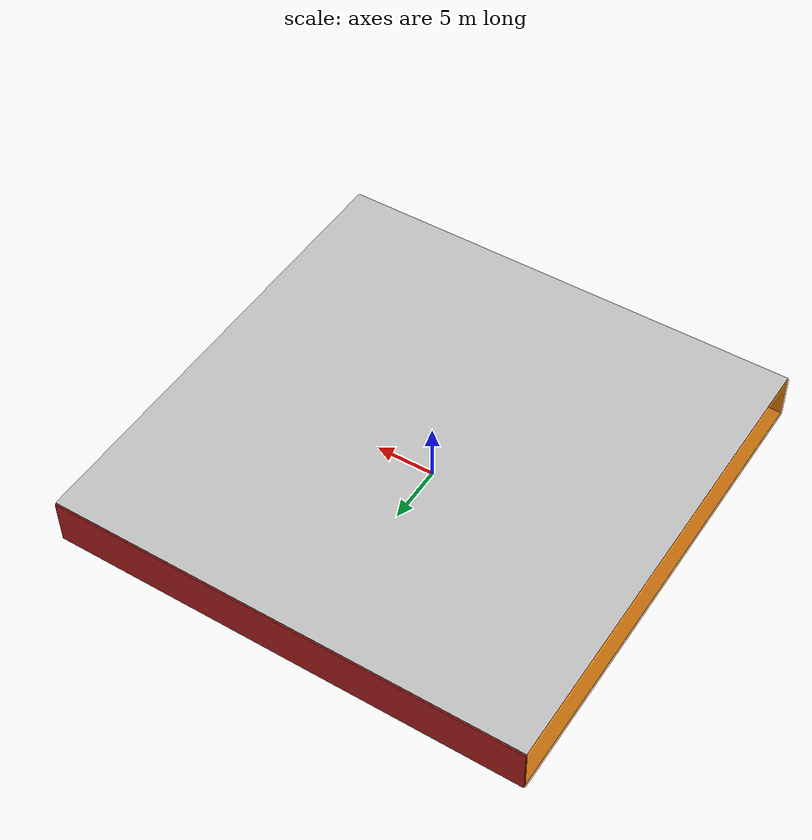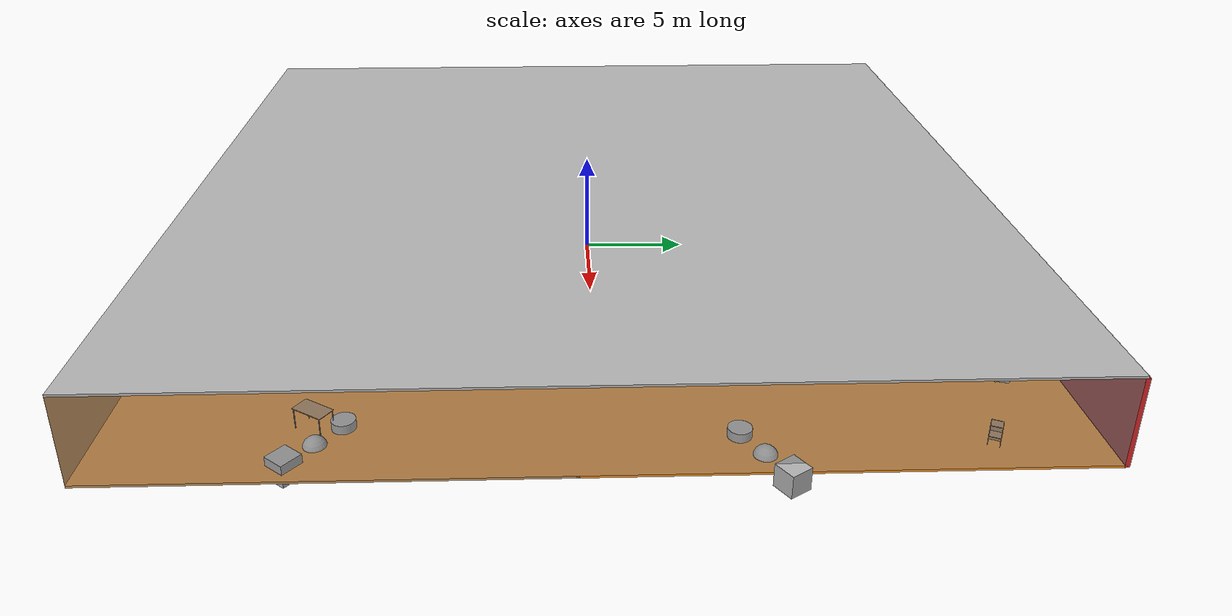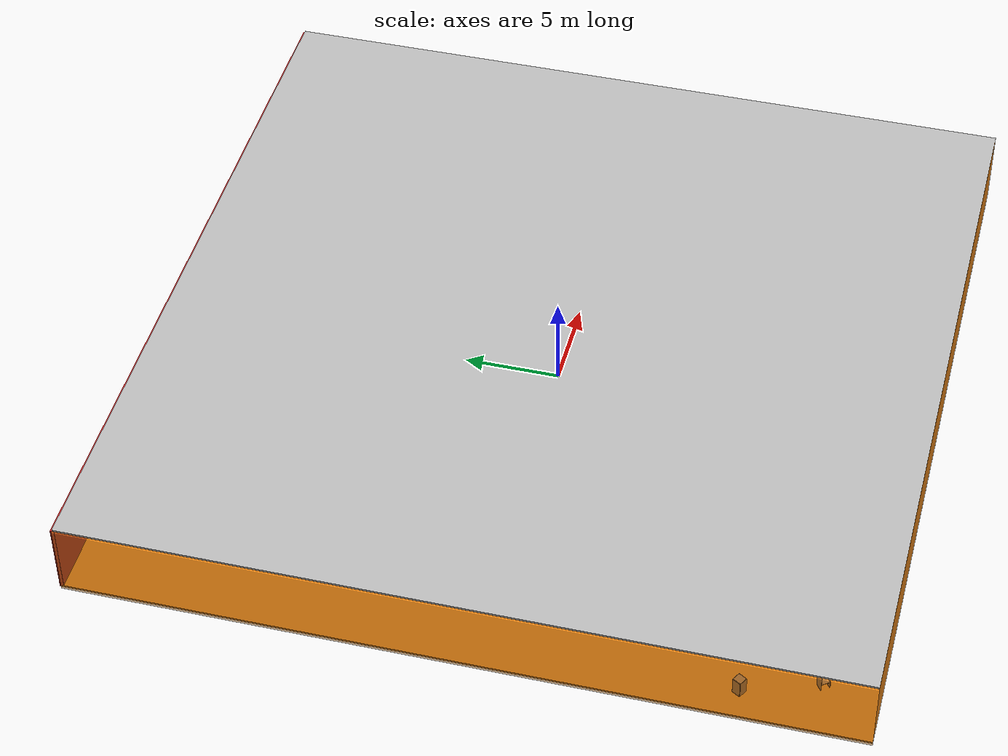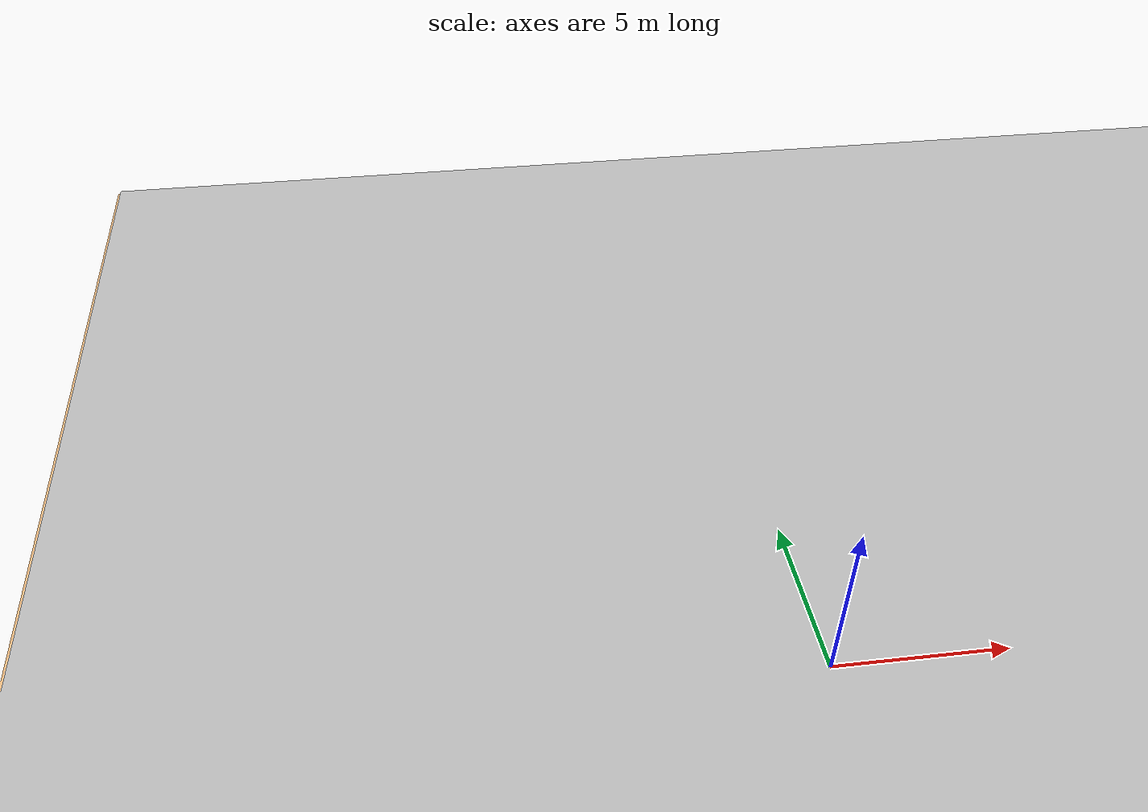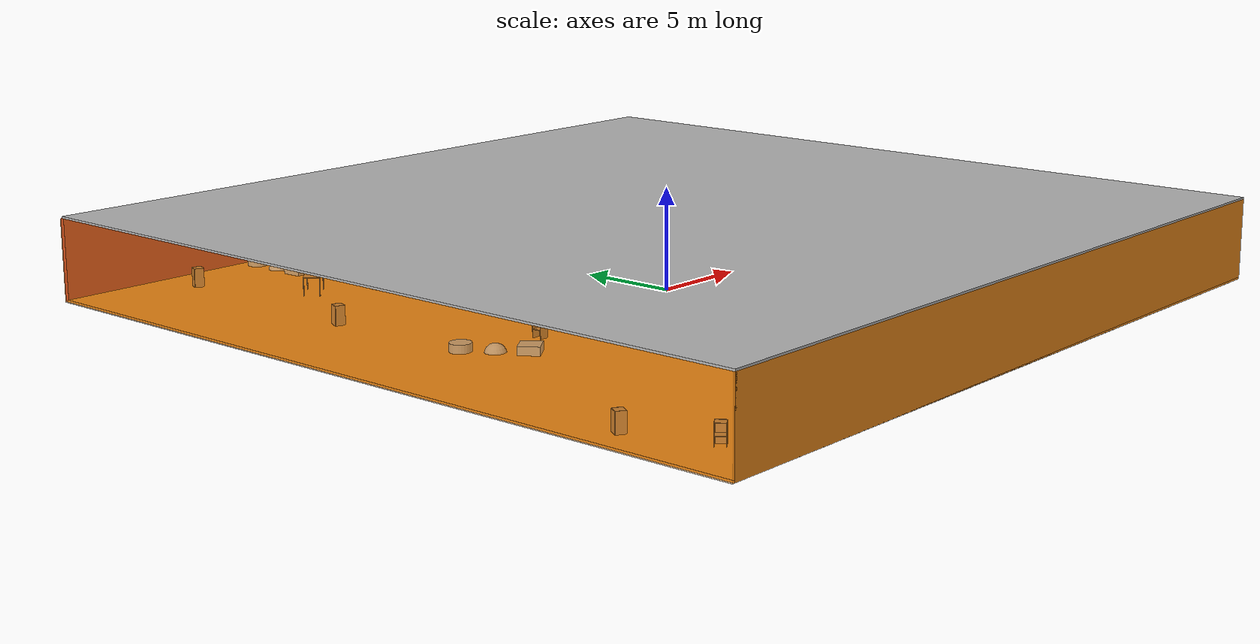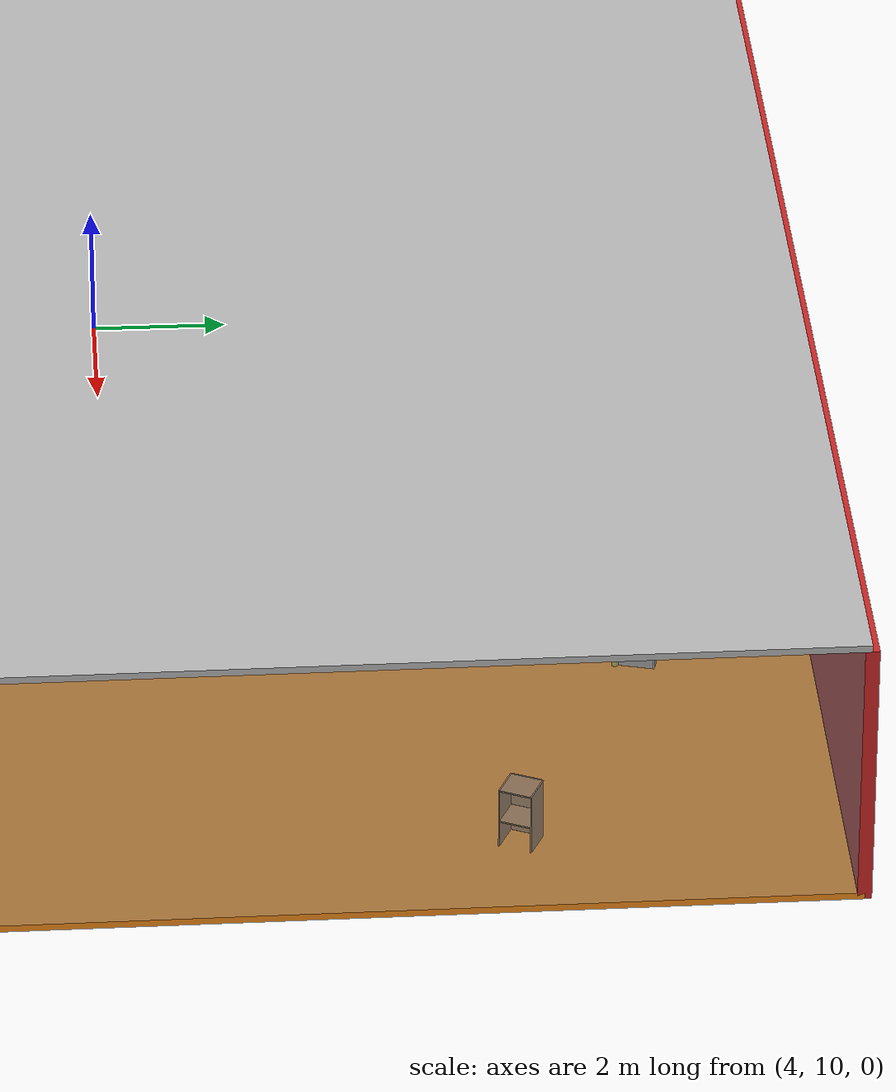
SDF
<sdf version="1.4">
 <world name="default">
  <physics type="ode">
   <max_step_size>0.001</max_step_size>
   <real_time_factor>1</real_time_factor>
   <real_time_update_rate>1000</real_time_update_rate>
   <gravity>0 0 -9.8</gravity>
  </physics>
  <scene><ambient>0.4 0.4 0.4 1</ambient><background>0.7 0.7 0.7 1</background><shadows>1</shadows></scene>
  <model name="Surrounding">
   <static>1</static>
   <link name="Ceiling">
    <collision name="Ceiling_Collision"><geometry><box><size>40 40 0.1</size></box></geometry></collision>
    <visual name="Ceiling_Visual">
     <geometry><box><size>40 40 0.1</size></box></geometry>
     <material>
      <script><uri>file://media/materials/scripts/gazebo.material</uri><name>Gazebo/LightOn</name></script>
     </material>
    </visual>
    <pose>0 0 4.05 0 0 0</pose>
   </link>
   <link name="Wall_South">
    <collision name="Wall_South_Collision">
     <geometry><box><size>40 0 4</size></box></geometry>
     <pose>0 0 2 0 -0 0</pose>
    </collision>
    <visual name="Wall_South_Visual">
     <pose>0 0 2 0 -0 0</pose>
     <geometry><box><size>40 0 4</size></box></geometry>
     <material>
      <script><uri>file://media/materials/scripts/gazebo.material</uri><name>Gazebo/Orange</name></script>
     </material>
    </visual>
    <velocity_decay><linear>0</linear><angular>0</angular></velocity_decay>
    <pose>0 -20 0 0 -0 0</pose>
   </link>
   <link name="Wall_East">
    <collision name="Wall_21_Collision">
     <geometry><box><size>40 0 4</size></box></geometry>
     <pose>0 0 2 0 -0 0</pose>
    </collision>
    <visual name="Wall_21_Visual">
     <pose>0 0 2 0 -0 0</pose>
     <geometry><box><size>40 0 4</size></box></geometry>
     <material>
      <script><uri>file://media/materials/scripts/gazebo.material</uri><name>Gazebo/GreyTransparent</name></script>
     </material>
    </visual>
    <velocity_decay><linear>0</linear><angular>0</angular></velocity_decay>
    <pose>20 0 0 0 -0 1.5708</pose>
   </link>
   <link name="Wall_North">
    <collision name="Wall_22_Collision">
     <geometry><box><size>40 0.2 4</size></box></geometry>
     <pose>0 0 2 0 -0 0</pose>
    </collision>
    <visual name="Wall_22_Visual">
     <pose>0 0 2 0 -0 0</pose>
     <geometry><box><size>40 0.2 4</size></box></geometry>
     <material>
      <script><uri>file://media/materials/scripts/gazebo.material</uri><name>Gazebo/RedBright</name></script>
     </material>
    </visual>
    <velocity_decay><linear>0</linear><angular>0</angular></velocity_decay>
    <pose>0 20 0 0 -0 0</pose>
   </link>
   <link name="Wall_West">
    <collision name="Wall_23_Collision">
     <geometry><box><size>40 0.2 4</size></box></geometry>
     <pose>0 0 2 0 -0 0</pose>
    </collision>
    <visual name="Wall_23_Visual">
     <pose>0 0 2 0 -0 0</pose>
     <geometry><box><size>40 0.2 4</size></box></geometry>
     <material>
      <script>
       <uri>file://media/materials/scripts/gazebo.material</uri>
       <name>Gazebo/OrangeTransparent</name>
      </script>
     </material>
    </visual>
    <velocity_decay><linear>0</linear><angular>0</angular></velocity_decay>
    <pose>-20 0 0 0 0 -1.5708</pose>
   </link>
   <link name="Ground_link">
    <collision name="collision">
     <pose>0 0 .05 0 -0 0</pose>
     <geometry><box><size>40 40 0.1</size></box></geometry>
    </collision>
    <visual name="visual">
     <pose>0 0 .05 0 -0 0</pose>
     <geometry><box><size>40 40 0.1</size></box></geometry>
     <material>
      <script><uri>file://media/materials/scripts/gazebo.material</uri><name>Gazebo/Orange</name></script>
     </material>
    </visual>
   </link>
   <static>1</static>
  </model>
  <spherical_coordinates>
   <surface_model>EARTH_WGS84</surface_model>
   <latitude_deg>0</latitude_deg>
   <longitude_deg>0</longitude_deg>
   <elevation>0</elevation>
   <heading_deg>0</heading_deg>
  </spherical_coordinates>
  <light name="lightball_0" type="diffuse">
   <diffuse>0.8 0.8 0.8 1</diffuse>
   <specular>0.2 0.2 0.2 1</specular>
   <attenuation>
    <range>100</range>
    <constant>0.7</constant>
    <linear>0.01</linear>
    <quadratic>0.001</quadratic>
   </attenuation>
   <direction>-0.5 0.1 -0.9</direction>
   <pose>-2.00567729643 -3.11610394952 3.15720540575 0 0 0</pose>
  </light>
  <light name="lightball_1" type="diffuse">
   <diffuse>0.8 0.8 0.8 1</diffuse>
   <specular>0.2 0.2 0.2 1</specular>
   <attenuation>
    <range>100</range>
    <constant>0.7</constant>
    <linear>0.01</linear>
    <quadratic>0.001</quadratic>
   </attenuation>
   <direction>-0.5 0.1 -0.9</direction>
   <pose>7.67498323401 -2.3674094459 0.801129639767 0 0 0</pose>
  </light>
  <light name="lightball_2" type="diffuse">
   <diffuse>0.8 0.8 0.8 1</diffuse>
   <specular>0.2 0.2 0.2 1</specular>
   <attenuation>
    <range>100</range>
    <constant>0.7</constant>
    <linear>0.01</linear>
    <quadratic>0.001</quadratic>
   </attenuation>
   <direction>-0.5 0.1 -0.9</direction>
   <pose>19.4327892859 -10.5674689708 2.82585097119 0 0 0</pose>
  </light>
  <light name="lightball_3" type="diffuse">
   <diffuse>0.8 0.8 0.8 1</diffuse>
   <specular>0.2 0.2 0.2 1</specular>
   <attenuation>
    <range>100</range>
    <constant>0.7</constant>
    <linear>0.01</linear>
    <quadratic>0.001</quadratic>
   </attenuation>
   <direction>-0.5 0.1 -0.9</direction>
   <pose>-9.40183038899 -5.21835054097 2.10410324296 0 0 0</pose>
  </light>
  <light name="lightball_4" type="diffuse">
   <diffuse>0.8 0.8 0.8 1</diffuse>
   <specular>0.2 0.2 0.2 1</specular>
   <attenuation>
    <range>100</range>
    <constant>0.7</constant>
    <linear>0.01</linear>
    <quadratic>0.001</quadratic>
   </attenuation>
   <direction>-0.5 0.1 -0.9</direction>
   <pose>14.0311907053 9.82629311427 1.69156482982 0 0 0</pose>
  </light>
  <light name="lightball_5" type="diffuse">
   <diffuse>0.8 0.8 0.8 1</diffuse>
   <specular>0.2 0.2 0.2 1</specular>
   <attenuation>
    <range>100</range>
    <constant>0.7</constant>
    <linear>0.01</linear>
    <quadratic>0.001</quadratic>
   </attenuation>
   <direction>-0.5 0.1 -0.9</direction>
   <pose>12.5861020833 10.4905799164 3.83746990239 0 0 0</pose>
  </light>
  <light name="lightball_6" type="diffuse">
   <diffuse>0.8 0.8 0.8 1</diffuse>
   <specular>0.2 0.2 0.2 1</specular>
   <attenuation>
    <range>100</range>
    <constant>0.7</constant>
    <linear>0.01</linear>
    <quadratic>0.001</quadratic>
   </attenuation>
   <direction>-0.5 0.1 -0.9</direction>
   <pose>4.72778634675 0.536581830442 1.69099901489 0 0 0</pose>
  </light>
  <light name="lightball_7" type="diffuse">
   <diffuse>0.8 0.8 0.8 1</diffuse>
   <specular>0.2 0.2 0.2 1</specular>
   <attenuation>
    <range>100</range>
    <constant>0.7</constant>
    <linear>0.01</linear>
    <quadratic>0.001</quadratic>
   </attenuation>
   <direction>-0.5 0.1 -0.9</direction>
   <pose>4.49391161163 -1.67844732395 2.72861360037 0 0 0</pose>
  </light>
  <light name="lightball_8" type="diffuse">
   <diffuse>0.8 0.8 0.8 1</diffuse>
   <specular>0.2 0.2 0.2 1</specular>
   <attenuation>
    <range>100</range>
    <constant>0.7</constant>
    <linear>0.01</linear>
    <quadratic>0.001</quadratic>
   </attenuation>
   <direction>-0.5 0.1 -0.9</direction>
   <pose>-4.24255314618 -10.7191276975 2.36937959325 0 0 0</pose>
  </light>
  <light name="lightball_9" type="diffuse">
   <diffuse>0.8 0.8 0.8 1</diffuse>
   <specular>0.2 0.2 0.2 1</specular>
   <attenuation>
    <range>100</range>
    <constant>0.7</constant>
    <linear>0.01</linear>
    <quadratic>0.001</quadratic>
   </attenuation>
   <direction>-0.5 0.1 -0.9</direction>
   <pose>8.32594900916 -11.0545775476 1.82293857807 0 0 0</pose>
  </light>
  <light name="lightball_10" type="diffuse">
   <diffuse>0.8 0.8 0.8 1</diffuse>
   <specular>0.2 0.2 0.2 1</specular>
   <attenuation>
    <range>100</range>
    <constant>0.7</constant>
    <linear>0.01</linear>
    <quadratic>0.001</quadratic>
   </attenuation>
   <direction>-0.5 0.1 -0.9</direction>
   <pose>-12.1799144656 9.32373337931 1.6441327935 0 0 0</pose>
  </light>
  <light name="lightball_11" type="diffuse">
   <diffuse>0.8 0.8 0.8 1</diffuse>
   <specular>0.2 0.2 0.2 1</specular>
   <attenuation>
    <range>100</range>
    <constant>0.7</constant>
    <linear>0.01</linear>
    <quadratic>0.001</quadratic>
   </attenuation>
   <direction>-0.5 0.1 -0.9</direction>
   <pose>3.71080687088 12.0416473057 1.78281554432 0 0 0</pose>
  </light>
  <light name="lightball_12" type="diffuse">
   <diffuse>0.8 0.8 0.8 1</diffuse>
   <specular>0.2 0.2 0.2 1</specular>
   <attenuation>
    <range>100</range>
    <constant>0.7</constant>
    <linear>0.01</linear>
    <quadratic>0.001</quadratic>
   </attenuation>
   <direction>-0.5 0.1 -0.9</direction>
   <pose>-17.0818251572 -11.5947763147 1.67960352004 0 0 0</pose>
  </light>
  <include><uri>model://cabinet</uri><pose>-17.2537577898 -17.1847780229 0 0 0 0.630182070277</pose></include>
  <include><uri>model://cabinet</uri><pose>-18.5266771214 -13.3822945373 0 0 0 2.61689692241</pose></include>
  <include>
   <uri>model://textured_shapes</uri>
   <pose>-13.5301527029 -1.91074899845 0 0 0 0.622523056506</pose>
  </include>
  <include><uri>model://cabinet</uri><pose>-14.7713872367 6.74460769054 0 0 0 2.81436080434</pose></include>
  <include><uri>model://cabinet</uri><pose>-14.3300366844 17.5210295408 0 0 0 2.73018668659</pose></include>
  <include><uri>model://cabinet</uri><pose>-10.6202175467 -1.73868664121 0 0 0 0.0132197874113</pose></include>
  <include><uri>model://table</uri><pose>-11.6029494583 12.2387886555 0 0 0 0.751281709158</pose></include>
  <include>
   <uri>model://robocup_3Dsim_goal</uri>
   <pose>-8.23509633273 10.1723377233 0 0 0 1.67650608776</pose>
  </include>
  <include>
   <uri>model://textured_shapes</uri>
   <pose>-9.46353351257 17.5025506525 0 0 0 0.0476998484851</pose>
  </include>
  <include><uri>model://cabinet</uri><pose>-3.03468908999 0.709911273527 0 0 0 2.25030717188</pose></include>
  <include>
   <uri>model://robocup_3Dsim_goal</uri>
   <pose>-1.93694274453 3.98181862101 0 0 0 1.56020129456</pose>
  </include>
  <include><uri>model://cabinet</uri><pose>-0.00294675154908 -13.637914317 0 0 0 1.4379823591</pose></include>
  <include>
   <uri>model://construction_cone</uri>
   <pose>4.31277403202 -17.7022871621 0 0 0 2.65134851695</pose>
  </include>
  <include><uri>model://cabinet</uri><pose>3.14978734852 19.0841847453 0 0 0 2.44654938618</pose></include>
  <include>
   <uri>model://textured_shapes</uri>
   <pose>6.5649799561 -3.13431148106 0 0 0 1.42559463814</pose>
  </include>
  <include>
   <uri>model://robocup_3Dsim_goal</uri>
   <pose>6.23769214788 6.40536832748 0 0 0 0.871555719035</pose>
  </include>
  <include>
   <uri>model://robocup_3Dsim_goal</uri>
   <pose>8.48351119193 -2.32090985597 0 0 0 0.938669915453</pose>
  </include>
  <include>
   <uri>model://robocup_3Dsim_goal</uri>
   <pose>8.89531871538 14.5870414502 0 0 0 1.62231294336</pose>
  </include>
  <include>
   <uri>model://robocup_3Dsim_goal</uri>
   <pose>13.062521874 17.3754927883 0 0 0 1.31340733663</pose>
  </include>
  <include><uri>model://table</uri><pose>16.6135779752 -11.4352995254 0 0 0 0.998482786098</pose></include>
  <include>
   <uri>model://textured_shapes</uri>
   <pose>17.7685652654 -11.2151986689 0 0 0 0.885427165023</pose>
  </include>
  <include>
   <uri>model://textured_shapes</uri>
   <pose>18.8985714391 6.32637007648 0 0 0 2.14531739757</pose>
  </include>
  <include><uri>model://cabinet</uri><pose>18.4379914723 15.4222822152 0 0 0 2.70213913524</pose></include>
 </world>
</sdf>

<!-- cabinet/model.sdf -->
<sdf version="1.5">
  <model name="cabinet">
    <static>true</static>
    <link name="cabinet_bottom_plate">
      <inertial>
        <pose>0 0 -1 0 0 0</pose>
        <inertia>
          <ixx>2.050000</ixx>
          <ixy>0</ixy>
          <ixz>0</ixz>
          <iyy>2.050000</iyy>
          <iyz>0</iyz>
          <izz>2.050000</izz>
        </inertia>
        <mass>25.000000</mass>
      </inertial>
      <collision name="cabinet_bottom_plate_geom">
        <pose>0 0 0.010000 0 0 0</pose>
        <geometry>
          <box>
            <size>0.450000 0.450000 0.020000</size>
          </box>
        </geometry>
      </collision>
      <visual name="cabinet_bottom_plate_geom_visual">
        <pose>0 0 0.010000 0 0 0</pose>
        <geometry>
          <box>
            <size>0.450000 0.450000 0.020000</size>
          </box>
        </geometry>
        <material>
          <script>
            <uri>model://media/materials/scripts/gazebo.material</uri>
            <name>Gazebo/Wood</name>
          </script>
        </material>
      </visual>
      <collision name="cabinet_bottom_plate_geom_cabinet_back_plate">
        <pose>0.235000 0 0.510000 0 0 0</pose>
        <geometry>
          <box>
            <size>0.020000 0.450000 1.020000</size>
          </box>
        </geometry>
      </collision>
      <visual name="cabinet_bottom_plate_geom_cabinet_back_plate_visual">
        <pose>0.235000 0 0.510000 0 0 0</pose>
        <geometry>
          <box>
            <size>0.020000 0.450000 1.020000</size>
          </box>
        </geometry>
        <material>
          <script>
            <uri>model://media/materials/scripts/gazebo.material</uri>
            <name>Gazebo/Wood</name>
          </script>
        </material>
      </visual>
      <collision name="cabinet_bottom_plate_geom_cabinet_left_plate">
        <pose>0 0.235000 0.510000 0 0 0</pose>
        <geometry>
          <box>
            <size>0.450000 0.020000 1.020000</size>
          </box>
        </geometry>
      </collision>
      <visual name="cabinet_bottom_plate_geom_cabinet_left_plate_visual">
        <pose>0 0.235000 0.510000 0 0 0</pose>
        <geometry>
          <box>
            <size>0.450000 0.020000 1.020000</size>
          </box>
        </geometry>
        <material>
          <script>
            <uri>model://media/materials/scripts/gazebo.material</uri>
            <name>Gazebo/Wood</name>
          </script>
        </material>
      </visual>
      <collision name="cabinet_bottom_plate_geom_cabinet_middle_plate">
        <pose>0 0 0.510000 0 0 0</pose>
        <geometry>
          <box>
            <size>0.450000 0.450000 0.020000</size>
          </box>
        </geometry>
      </collision>
      <visual name="cabinet_bottom_plate_geom_cabinet_middle_plate_visual">
        <pose>0 0 0.510000 0 0 0</pose>
        <geometry>
          <box>
            <size>0.450000 0.450000 0.020000</size>
          </box>
        </geometry>
        <material>
          <script>
            <uri>model://media/materials/scripts/gazebo.material</uri>
            <name>Gazebo/Wood</name>
          </script>
        </material>
      </visual>
      <collision name="cabinet_bottom_plate_geom_cabinet_right_plate">
        <pose>0 -0.235000 0.510000 0 0 0</pose>
        <geometry>
          <box>
            <size>0.450000 0.020000 1.020000</size>
          </box>
        </geometry>
      </collision>
      <visual name="cabinet_bottom_plate_geom_cabinet_right_plate_visual">
        <pose>0 -0.235000 0.510000 0 0 0</pose>
        <geometry>
          <box>
            <size>0.450000 0.020000 1.020000</size>
          </box>
        </geometry>
        <material>
          <script>
            <uri>model://media/materials/scripts/gazebo.material</uri>
            <name>Gazebo/Wood</name>
          </script>
        </material>
      </visual>
      <collision name="cabinet_bottom_plate_geom_cabinet_top_plate">
        <pose>0 0 1.010000 0 0 0</pose>
        <geometry>
          <box>
            <size>0.450000 0.450000 0.020000</size>
          </box>
        </geometry>
      </collision>
      <visual name="cabinet_bottom_plate_geom_cabinet_top_plate_visual">
        <pose>0 0 1.010000 0 0 0</pose>
        <geometry>
          <box>
            <size>0.450000 0.450000 0.020000</size>
          </box>
        </geometry>
        <material>
          <script>
            <uri>model://media/materials/scripts/gazebo.material</uri>
            <name>Gazebo/Wood</name>
          </script>
        </material>
      </visual>
    </link>
  </model>
</sdf>

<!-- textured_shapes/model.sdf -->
<sdf version="1.6">
  <model name="textured_shapes">
    <pose>0 0 0.5 0 0 0</pose>
    <link name="box">
      <pose>0 -1.5 0 0 0 0</pose>
      <collision name="collision">
        <geometry>
          <box>
            <size>1 1 1</size>
          </box>
        </geometry>
      </collision>
      <visual name="visual">
        <geometry>
          <box>
            <size>1 1 1</size>
          </box>
        </geometry>
        <material>
          <script>
            <uri>model://../model_source/models/textured_shapes/materials/scripts</uri>
            <uri>model://../model_source/models/textured_shapes/materials/textures</uri>
            <name>TexturedShape/Squares</name>
          </script>
        </material>
      </visual>
    </link>
    <link name="sphere">
      <collision name="collision">
        <geometry>
          <sphere>
            <radius>0.5</radius>
          </sphere>
        </geometry>
      </collision>
      <visual name="visual">
        <geometry>
          <sphere>
            <radius>0.5</radius>
          </sphere>
        </geometry>
        <material>
          <script>
            <uri>model://../model_source/models/textured_shapes/materials/scripts</uri>
            <uri>model://../model_source/models/textured_shapes/materials/textures</uri>
            <name>TexturedShape/Squares</name>
          </script>
        </material>
      </visual>
    </link>
    <link name="cylinder">
      <pose>0 1.5 0 0 0 0</pose>
      <collision name="collision">
        <geometry>
          <cylinder>
            <radius>0.5</radius>
            <length>1</length>
          </cylinder>
        </geometry>
      </collision>
      <visual name="visual">
        <geometry>
          <cylinder>
            <radius>0.5</radius>
            <length>1</length>
          </cylinder>
        </geometry>
        <material>
          <script>
            <uri>model://../model_source/models/textured_shapes/materials/scripts</uri>
            <uri>model://../model_source/models/textured_shapes/materials/textures</uri>
            <name>TexturedShape/Squares</name>
          </script>
        </material>
      </visual>
    </link>
  </model>
</sdf>

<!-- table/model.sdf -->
<sdf version="1.5">
  <model name="table">
    <static>true</static>
    <link name="link">
      <collision name="surface">
        <pose>0 0 1.0 0 0 0</pose>
        <geometry>
          <box>
            <size>1.5 0.8 0.03</size>
          </box>
        </geometry>
        <surface>
          <friction>
            <ode>
              <mu>0.6</mu>
              <mu2>0.6</mu2>
            </ode>
          </friction>
        </surface>
      </collision>
      <visual name="visual1">
        <pose>0 0 1.0 0 0 0</pose>
        <geometry>
          <box>
            <size>1.5 0.8 0.03</size>
          </box>
        </geometry>
        <material>
          <script>
            <uri>model://media/materials/scripts/gazebo.material</uri>
            <name>Gazebo/Wood</name>
          </script>
        </material>
      </visual>
      <collision name="front_left_leg">
        <pose>0.68 0.38 0.5 0 0 0</pose>
        <geometry>
          <cylinder>
            <radius>0.02</radius>
            <length>1.0</length>
          </cylinder>
        </geometry>
      </collision>
      <visual name="front_left_leg">
        <pose>0.68 0.38 0.5 0 0 0</pose>
        <geometry>
          <cylinder>
            <radius>0.02</radius>
            <length>1.0</length>
          </cylinder>
        </geometry>
        <material>
          <script>
            <uri>model://media/materials/scripts/gazebo.material</uri>
            <name>Gazebo/Grey</name>
          </script>
        </material>
      </visual>
      <collision name="front_right_leg">
        <pose>0.68 -0.38 0.5 0 0 0</pose>
        <geometry>
          <cylinder>
            <radius>0.02</radius>
            <length>1.0</length>
          </cylinder>
        </geometry>
      </collision>
      <visual name="front_right_leg">
        <pose>0.68 -0.38 0.5 0 0 0</pose>
        <geometry>
          <cylinder>
            <radius>0.02</radius>
            <length>1.0</length>
          </cylinder>
        </geometry>
        <material>
          <script>
            <uri>model://media/materials/scripts/gazebo.material</uri>
            <name>Gazebo/Grey</name>
          </script>
        </material>
      </visual>
      <collision name="back_right_leg">
        <pose>-0.68 -0.38 0.5 0 0 0</pose>
        <geometry>
          <cylinder>
            <radius>0.02</radius>
            <length>1.0</length>
          </cylinder>
        </geometry>
      </collision>
      <visual name="back_right_leg">
        <pose>-0.68 -0.38 0.5 0 0 0</pose>
        <geometry>
          <cylinder>
            <radius>0.02</radius>
            <length>1.0</length>
          </cylinder>
        </geometry>
        <material>
          <script>
            <uri>model://media/materials/scripts/gazebo.material</uri>
            <name>Gazebo/Grey</name>
          </script>
        </material>
      </visual>
      <collision name="back_left_leg">
        <pose>-0.68 0.38 0.5 0 0 0</pose>
        <geometry>
          <cylinder>
            <radius>0.02</radius>
            <length>1.0</length>
          </cylinder>
        </geometry>
      </collision>
      <visual name="back_left_leg">
        <pose>-0.68 0.38 0.5 0 0 0</pose>
        <geometry>
          <cylinder>
            <radius>0.02</radius>
            <length>1.0</length>
          </cylinder>
        </geometry>
        <material>
          <script>
            <uri>model://media/materials/scripts/gazebo.material</uri>
            <name>Gazebo/Grey</name>
          </script>
        </material>
      </visual>
    </link>
  </model>
</sdf>

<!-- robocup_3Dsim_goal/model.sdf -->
<sdf version="1.5">
  <model name="robocup_3d_goal">
    <static>true</static>
    <link name="left_post">
      <pose>0 1.05 0.45 0 0 0</pose>
      <collision name="collision">
        <geometry>
          <cylinder>
            <radius>0.05</radius>
            <length>0.9</length>
          </cylinder>
        </geometry>
      </collision>
      <visual name="visual">
        <geometry>
          <cylinder>
            <radius>0.05</radius>
            <length>0.9</length>
          </cylinder>
        </geometry>
        <material>
          <script>
            <uri>file://media/materials/scripts/gazebo.material</uri>
            <name>Gazebo/ZincYellow</name>
          </script>
        </material>
      </visual>
    </link>
    <link name="left_support_horiz_lower">
      <pose>0.30 1.05 0.01 0 0 0</pose>
      <collision name="collision">
        <geometry>
          <box>
            <size>0.50 0.02 0.02</size>
          </box>
        </geometry>
      </collision>
      <visual name="visual">
        <geometry>
          <box>
            <size>0.50 0.02 0.02</size>
          </box>
        </geometry>
        <material>
          <script>
            <uri>file://media/materials/scripts/gazebo.material</uri>
            <name>Gazebo/White</name>
          </script>
        </material>
      </visual>
    </link>
    <link name="left_support_horiz_upper">
      <pose>0.30 1.05 0.79 0 0 0</pose>
      <collision name="collision">
        <geometry>
          <box>
            <size>0.50 0.02 0.02</size>
          </box>
        </geometry>
      </collision>
      <visual name="visual">
        <geometry>
          <box>
            <size>0.50 0.02 0.02</size>
          </box>
        </geometry>
        <material>
          <script>
            <uri>file://media/materials/scripts/gazebo.material</uri>
            <name>Gazebo/White</name>
          </script>
        </material>
      </visual>
    </link>
    <link name="left_support_vertical">
      <pose>0.56 1.05 0.4 0 1.5708 0</pose>
      <collision name="collision">
        <geometry>
          <box>
            <size>0.80 0.02 0.02</size>
          </box>
        </geometry>
      </collision>
      <visual name="visual">
        <geometry>
          <box>
            <size>0.80 0.02 0.02</size>
          </box>
        </geometry>
        <material>
          <script>
            <uri>file://media/materials/scripts/gazebo.material</uri>
            <name>Gazebo/White</name>
          </script>
        </material>
      </visual>
    </link>
    <link name="right_support_horiz_lower">
      <pose>0.30 -1.05 0.01 0 0 0</pose>
      <collision name="collision">
        <geometry>
          <box>
            <size>0.50 0.02 0.02</size>
          </box>
        </geometry>
      </collision>
      <visual name="visual">
        <geometry>
          <box>
            <size>0.50 0.02 0.02</size>
          </box>
        </geometry>
        <material>
          <script>
            <uri>file://media/materials/scripts/gazebo.material</uri>
            <name>Gazebo/White</name>
          </script>
        </material>
      </visual>
    </link>
    <link name="right_support_horiz_upper">
      <pose>0.30 -1.05 0.79 0 0 0</pose>
      <collision name="collision">
        <geometry>
          <box>
            <size>0.50 0.02 0.02</size>
          </box>
        </geometry>
      </collision>
      <visual name="visual">
        <geometry>
          <box>
            <size>0.50 0.02 0.02</size>
          </box>
        </geometry>
        <material>
          <script>
            <uri>file://media/materials/scripts/gazebo.material</uri>
            <name>Gazebo/White</name>
          </script>
        </material>
      </visual>
    </link>
    <link name="right_support_vertical">
      <pose>0.56 -1.05 0.4 0 1.5708 0</pose>
      <collision name="collision">
        <geometry>
          <box>
            <size>0.80 0.02 0.02</size>
          </box>
        </geometry>
      </collision>
      <visual name="visual">
        <geometry>
          <box>
            <size>0.80 0.02 0.02</size>
          </box>
        </geometry>
        <material>
          <script>
            <uri>file://media/materials/scripts/gazebo.material</uri>
            <name>Gazebo/White</name>
          </script>
        </material>
      </visual>
    </link>
    <link name="center_support_horiz_lower">
      <pose>0.56 0 0.01 0 1.5708 0</pose>
      <collision name="collision">
        <geometry>
          <box>
            <size>0.02 2.08 0.02</size>
          </box>
        </geometry>
      </collision>
      <visual name="visual">
        <geometry>
          <box>
            <size>0.02 2.08 0.02</size>
          </box>
        </geometry>
        <material>
          <script>
            <uri>file://media/materials/scripts/gazebo.material</uri>
            <name>Gazebo/White</name>
          </script>
        </material>
      </visual>
    </link>
    <link name="center_support_horiz_upper">
      <pose>0.56 0 0.79 0 1.5708 0</pose>
      <collision name="collision">
        <geometry>
          <box>
            <size>0.02 2.08 0.02</size>
          </box>
        </geometry>
      </collision>
      <visual name="visual">
        <geometry>
          <box>
            <size>0.02 2.08 0.02</size>
          </box>
        </geometry>
        <material>
          <script>
            <uri>file://media/materials/scripts/gazebo.material</uri>
            <name>Gazebo/White</name>
          </script>
        </material>
      </visual>
    </link>
    <link name="right_post">
      <pose>0 -1.05 0.45 0 0 0</pose>
      <collision name="collision">
        <geometry>
          <cylinder>
            <radius>0.05</radius>
            <length>0.9</length>
          </cylinder>
        </geometry>
      </collision>
      <visual name="visual">
        <geometry>
          <cylinder>
            <radius>0.05</radius>
            <length>0.9</length>
          </cylinder>
        </geometry>
        <material>
          <script>
            <uri>file://media/materials/scripts/gazebo.material</uri>
            <name>Gazebo/ZincYellow</name>
          </script>
        </material>
      </visual>
    </link>
    <link name="crossbar">
      <pose>0 0 0.85 1.57 1.57 0</pose>
      <collision name="collision">
        <geometry>
          <cylinder>
            <radius>0.05</radius>
            <length>2.0</length>
          </cylinder>
        </geometry>
      </collision>
      <visual name="visual">
        <geometry>
          <cylinder>
            <radius>0.05</radius>
            <length>2.0</length>
          </cylinder>
        </geometry>
        <material>
          <script>
            <uri>file://media/materials/scripts/gazebo.material</uri>
            <name>Gazebo/ZincYellow</name>
          </script>
        </material>
      </visual>
    </link>
    <link name="center_net">
      <pose>0.56 0 0.40 0 0 0</pose>
      <collision name="collision">
        <geometry>
          <box>
            <size>0.01 2.1 0.80</size>
          </box>
        </geometry>
      </collision>
      <visual name="visual">
        <geometry>
          <box>
            <size>0.01 2.1 0.80</size>
          </box>
        </geometry>
        <material>
          <script>
            <uri>model://../model_source/models/robocup09_spl_field/materials/scripts/</uri>
            <uri>model://../model_source/models/robocup09_spl_field/materials/textures/</uri>
            <name>RoboCup/Net</name>
          </script>
        </material>
      </visual>
    </link>
    <link name="left_net">
      <pose>0.30 1.05 0.40 0 0 0</pose>
      <collision name="collision">
        <geometry>
          <box>
            <size>0.50 0.01 0.76</size>
          </box>
        </geometry>
      </collision>
      <visual name="visual">
        <geometry>
          <box>
            <size>0.50 0.01 0.76</size>
          </box>
        </geometry>
        <material>
          <script>
            <uri>model://../model_source/models/robocup09_spl_field/materials/scripts/</uri>
            <uri>model://../model_source/models/robocup09_spl_field/materials/textures/</uri>
            <name>RoboCup/Net</name>
          </script>
        </material>
      </visual>
    </link>
    <link name="right_net">
      <pose>0.30 -1.05 0.40 0 0 0</pose>
      <collision name="collision">
        <geometry>
          <box>
            <size>0.50 0.01 0.76</size>
          </box>
        </geometry>
      </collision>
      <visual name="visual">
        <geometry>
          <box>
            <size>0.50 0.01 0.76</size>
          </box>
        </geometry>
        <material>
          <script>
            <uri>model://../model_source/models/robocup09_spl_field/materials/scripts/</uri>
            <uri>model://../model_source/models/robocup09_spl_field/materials/textures/</uri>
            <name>RoboCup/Net</name>
          </script>
        </material>
      </visual>
    </link>
  </model>
</sdf>

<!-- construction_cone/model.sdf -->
<sdf version="1.5">
  <model name="Construction Cone">
    <link name="link">
      <collision name="collision">
        <geometry>
          <mesh>
            <scale>10 10 10</scale>
            <uri>file://isr-testbed/construction_cone/meshes/construction_cone.dae</uri>
          </mesh>
        </geometry>
      </collision>
      <visual name="visual">
        <geometry>
          <mesh>
            <scale>10 10 10</scale>
            <uri>file://isr-testbed/construction_cone/meshes/construction_cone.dae</uri>
          </mesh>
        </geometry>
      </visual>
    </link>
  </model>
</sdf>
